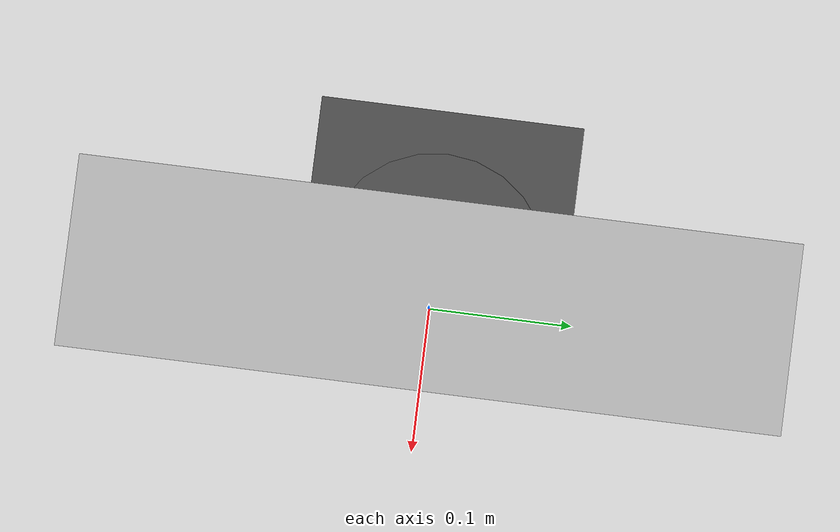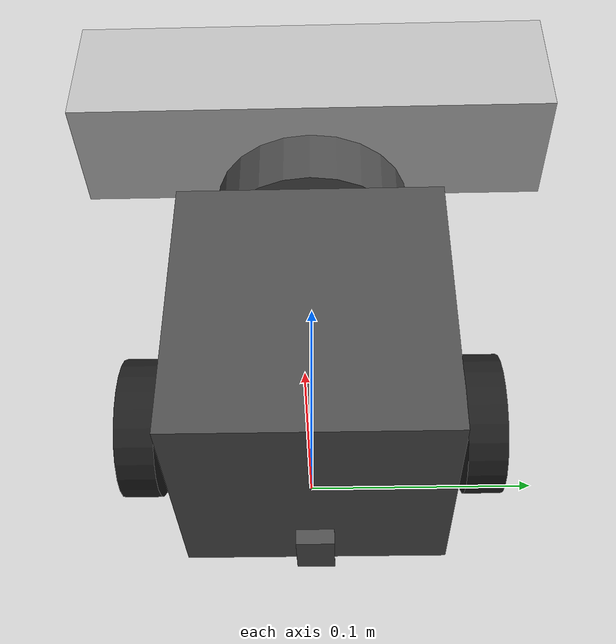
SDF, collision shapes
<?xml version='1.0'?>
<sdf version='1.7'>
  <model name='turtlebot3_burger_kinect'>
    <link name='base_footprint'>
      <inertial>
        <pose>-0.00429 0 0.030734 0 -0 0</pose>
        <mass>0.944735</mass>
        <inertia>
          <ixx>0.00717896</ixx>
          <ixy>-1.22941e-05</ixy>
          <ixz>0.00057674</ixz>
          <iyy>0.00721804</iyy>
          <iyz>-5.01209e-06</iyz>
          <izz>0.00413858</izz>
        </inertia>
      </inertial>
      <sensor name='imu' type='imu'>
        <always_on>1</always_on>
        <visualize>0</visualize>
        <pose>-0.032 0 0.078 0 -0 0</pose>
        <imu />
      </sensor>
      <sensor name='lds_lfcd_sensor' type='ray'>
        <visualize>0</visualize>
        <update_rate>5</update_rate>
        <ray>
          <scan>
            <horizontal>
              <samples>360</samples>
              <resolution>1</resolution>
              <min_angle>0</min_angle>
              <max_angle>6.28319</max_angle>
            </horizontal>
            <vertical>
              <samples>1</samples>
              <min_angle>0</min_angle>
              <max_angle>0</max_angle>
            </vertical>
          </scan>
          <range>
            <min>0.12</min>
            <max>3.5</max>
            <resolution>0.015</resolution>
          </range>
          <noise>
            <type>gaussian</type>
            <mean>0</mean>
            <stddev>0.01</stddev>
          </noise>
        </ray>
        <plugin name='gazebo_ros_lds_lfcd_controller' filename='libgazebo_ros_laser.so'>
          <topicName>scan</topicName>
          <frameName>base_scan</frameName>
          <robotNamespace>/</robotNamespace>
        </plugin>
        <pose>-0.032 0 0.182 0 -0 0</pose>
      </sensor>
      <self_collide>0</self_collide>
      <enable_wind>0</enable_wind>
      <kinematic>0</kinematic>
      <pose>0 0 0 0 -0 0</pose>
      <visual name='base_footprint_fixed_joint_lump__base_link_visual'>
        <pose>-0.032 0 0.01 0 -0 0</pose>
        <geometry>
          <mesh>
            <scale>0.001 0.001 0.001</scale>
            <uri>/opt/ros/noetic/share/turtlebot3_description/meshes/bases/burger_base.stl</uri>
          </mesh>
        </geometry>
        <material>
          <script>
            <name>Gazebo/DarkGrey</name>
            <uri>file://media/materials/scripts/gazebo.material</uri>
          </script>
          <shader type='pixel' />
        </material>
        <transparency>0</transparency>
        <cast_shadows>1</cast_shadows>
      </visual>
      <visual name='base_footprint_fixed_joint_lump__base_scan_visual_1'>
        <pose>-0.032 0 0.182 0 -0 0</pose>
        <geometry>
          <mesh>
            <scale>0.001 0.001 0.001</scale>
            <uri>/opt/ros/noetic/share/turtlebot3_description/meshes/sensors/lds.stl</uri>
          </mesh>
        </geometry>
        <material>
          <script>
            <name>Gazebo/FlatBlack</name>
            <uri>file://media/materials/scripts/gazebo.material</uri>
          </script>
          <shader type='pixel' />
        </material>
        <transparency>0</transparency>
        <cast_shadows>1</cast_shadows>
      </visual>
      <collision name='base_footprint_fixed_joint_lump__base_link_collision'>
        <laser_retro>0</laser_retro>
        <max_contacts>10</max_contacts>
        <pose>-0.032 0 0.08 0 -0 0</pose>
        <geometry>
          <box>
            <size>0.14 0.14 0.143</size>
          </box>
        </geometry>
        <surface>
          <friction>
            <ode>
              <mu>1</mu>
              <mu2>1</mu2>
              <fdir1>0 0 0</fdir1>
              <slip1>0</slip1>
              <slip2>0</slip2>
            </ode>
            <torsional>
              <coefficient>1</coefficient>
              <patch_radius>0</patch_radius>
              <surface_radius>0</surface_radius>
              <use_patch_radius>1</use_patch_radius>
              <ode>
                <slip>0</slip>
              </ode>
            </torsional>
          </friction>
          <bounce>
            <restitution_coefficient>0</restitution_coefficient>
            <threshold>1e+06</threshold>
          </bounce>
          <contact>
            <collide_without_contact>0</collide_without_contact>
            <collide_without_contact_bitmask>1</collide_without_contact_bitmask>
            <collide_bitmask>1</collide_bitmask>
            <ode>
              <soft_cfm>0</soft_cfm>
              <soft_erp>0.2</soft_erp>
              <kp>1e+13</kp>
              <kd>1</kd>
              <max_vel>0.01</max_vel>
              <min_depth>0</min_depth>
            </ode>
            <bullet>
              <split_impulse>1</split_impulse>
              <split_impulse_penetration_threshold>-0.01</split_impulse_penetration_threshold>
              <soft_cfm>0</soft_cfm>
              <soft_erp>0.2</soft_erp>
              <kp>1e+13</kp>
              <kd>1</kd>
            </bullet>
          </contact>
        </surface>
      </collision>
      <collision name='base_footprint_fixed_joint_lump__caster_back_link_collision_1'>
        <laser_retro>0</laser_retro>
        <max_contacts>10</max_contacts>
        <pose>-0.081 1e-06 0.005 -1.57 0 0</pose>
        <geometry>
          <box>
            <size>0.03 0.009 0.02</size>
          </box>
        </geometry>
        <surface>
          <friction>
            <ode>
              <mu>0.1</mu>
              <mu2>0.1</mu2>
              <fdir1>0 0 0</fdir1>
              <slip1>0</slip1>
              <slip2>0</slip2>
            </ode>
            <torsional>
              <coefficient>1</coefficient>
              <patch_radius>0</patch_radius>
              <surface_radius>0</surface_radius>
              <use_patch_radius>1</use_patch_radius>
              <ode>
                <slip>0</slip>
              </ode>
            </torsional>
          </friction>
          <bounce>
            <restitution_coefficient>0</restitution_coefficient>
            <threshold>1e+06</threshold>
          </bounce>
          <contact>
            <collide_without_contact>0</collide_without_contact>
            <collide_without_contact_bitmask>1</collide_without_contact_bitmask>
            <collide_bitmask>1</collide_bitmask>
            <ode>
              <soft_cfm>0</soft_cfm>
              <soft_erp>0.2</soft_erp>
              <kp>1e+06</kp>
              <kd>100</kd>
              <max_vel>1</max_vel>
              <min_depth>0.001</min_depth>
            </ode>
            <bullet>
              <split_impulse>1</split_impulse>
              <split_impulse_penetration_threshold>-0.01</split_impulse_penetration_threshold>
              <soft_cfm>0</soft_cfm>
              <soft_erp>0.2</soft_erp>
              <kp>1e+06</kp>
              <kd>100</kd>
            </bullet>
          </contact>
        </surface>
      </collision>
      <collision name='base_footprint_fixed_joint_lump__base_scan_collision_2'>
        <laser_retro>0</laser_retro>
        <max_contacts>10</max_contacts>
        <pose>-0.017 0 0.1755 0 -0 0</pose>
        <geometry>
          <cylinder>
            <radius>0.055</radius>
            <length>0.0315</length>
          </cylinder>
        </geometry>
        <surface>
          <friction>
            <ode>
              <mu>1</mu>
              <mu2>1</mu2>
              <fdir1>0 0 0</fdir1>
              <slip1>0</slip1>
              <slip2>0</slip2>
            </ode>
            <torsional>
              <coefficient>1</coefficient>
              <patch_radius>0</patch_radius>
              <surface_radius>0</surface_radius>
              <use_patch_radius>1</use_patch_radius>
              <ode>
                <slip>0</slip>
              </ode>
            </torsional>
          </friction>
          <bounce>
            <restitution_coefficient>0</restitution_coefficient>
            <threshold>1e+06</threshold>
          </bounce>
          <contact>
            <collide_without_contact>0</collide_without_contact>
            <collide_without_contact_bitmask>1</collide_without_contact_bitmask>
            <collide_bitmask>1</collide_bitmask>
            <ode>
              <soft_cfm>0</soft_cfm>
              <soft_erp>0.2</soft_erp>
              <kp>1e+13</kp>
              <kd>1</kd>
              <max_vel>0.01</max_vel>
              <min_depth>0</min_depth>
            </ode>
            <bullet>
              <split_impulse>1</split_impulse>
              <split_impulse_penetration_threshold>-0.01</split_impulse_penetration_threshold>
              <soft_cfm>0</soft_cfm>
              <soft_erp>0.2</soft_erp>
              <kp>1e+13</kp>
              <kd>1</kd>
            </bullet>
          </contact>
        </surface>
      </collision>
    </link>
    <link name='wheel_left_link'>
      <pose>0 0.08 0.033 -1.57 -0 0</pose>
      <inertial>
        <pose>0 0 0 0 -0 0</pose>
        <mass>0.0284989</mass>
        <inertia>
          <ixx>1.11756e-05</ixx>
          <ixy>-4.23698e-11</ixy>
          <ixz>-5.93817e-09</ixz>
          <iyy>1.11924e-05</iyy>
          <iyz>-1.44001e-11</iyz>
          <izz>2.07126e-05</izz>
        </inertia>
      </inertial>
      <self_collide>0</self_collide>
      <enable_wind>0</enable_wind>
      <kinematic>0</kinematic>
      <visual name='wheel_left_link_visual'>
        <pose>0 0 0 1.57 -0 0</pose>
        <geometry>
          <mesh>
            <scale>0.001 0.001 0.001</scale>
            <uri>/opt/ros/noetic/share/turtlebot3_description/meshes/wheels/left_tire.stl</uri>
          </mesh>
        </geometry>
        <material>
          <script>
            <name>Gazebo/FlatBlack</name>
            <uri>file://media/materials/scripts/gazebo.material</uri>
          </script>
          <shader type='pixel' />
        </material>
        <transparency>0</transparency>
        <cast_shadows>1</cast_shadows>
      </visual>
      <collision name='wheel_left_link_collision'>
        <laser_retro>0</laser_retro>
        <max_contacts>10</max_contacts>
        <pose>0 0 0 0 -0 0</pose>
        <geometry>
          <cylinder>
            <radius>0.033</radius>
            <length>0.018</length>
          </cylinder>
        </geometry>
        <surface>
          <friction>
            <ode>
              <mu>0.1</mu>
              <mu2>0.1</mu2>
              <fdir1>1 0 0</fdir1>
              <slip1>0</slip1>
              <slip2>0</slip2>
            </ode>
            <torsional>
              <coefficient>1</coefficient>
              <patch_radius>0</patch_radius>
              <surface_radius>0</surface_radius>
              <use_patch_radius>1</use_patch_radius>
              <ode>
                <slip>0</slip>
              </ode>
            </torsional>
          </friction>
          <bounce>
            <restitution_coefficient>0</restitution_coefficient>
            <threshold>1e+06</threshold>
          </bounce>
          <contact>
            <collide_without_contact>0</collide_without_contact>
            <collide_without_contact_bitmask>1</collide_without_contact_bitmask>
            <collide_bitmask>1</collide_bitmask>
            <ode>
              <soft_cfm>0</soft_cfm>
              <soft_erp>0.2</soft_erp>
              <kp>500000</kp>
              <kd>10</kd>
              <max_vel>0.1</max_vel>
              <min_depth>0.001</min_depth>
            </ode>
            <bullet>
              <split_impulse>1</split_impulse>
              <split_impulse_penetration_threshold>-0.01</split_impulse_penetration_threshold>
              <soft_cfm>0</soft_cfm>
              <soft_erp>0.2</soft_erp>
              <kp>500000</kp>
              <kd>10</kd>
            </bullet>
          </contact>
        </surface>
      </collision>
    </link>
    <link name='wheel_right_link'>
      <pose>0 -0.08 0.033 -1.57 -0 0</pose>
      <inertial>
        <pose>0 0 0 0 -0 0</pose>
        <mass>0.0284989</mass>
        <inertia>
          <ixx>1.11756e-05</ixx>
          <ixy>-4.23698e-11</ixy>
          <ixz>-5.93817e-09</ixz>
          <iyy>1.11924e-05</iyy>
          <iyz>-1.44001e-11</iyz>
          <izz>2.07126e-05</izz>
        </inertia>
      </inertial>
      <self_collide>0</self_collide>
      <enable_wind>0</enable_wind>
      <kinematic>0</kinematic>
      <visual name='wheel_right_link_visual'>
        <pose>0 0 0 1.57 -0 0</pose>
        <geometry>
          <mesh>
            <scale>0.001 0.001 0.001</scale>
            <uri>/opt/ros/noetic/share/turtlebot3_description/meshes/wheels/right_tire.stl</uri>
          </mesh>
        </geometry>
        <material>
          <script>
            <name>Gazebo/FlatBlack</name>
            <uri>file://media/materials/scripts/gazebo.material</uri>
          </script>
          <shader type='pixel' />
        </material>
        <transparency>0</transparency>
        <cast_shadows>1</cast_shadows>
      </visual>
      <collision name='wheel_right_link_collision'>
        <laser_retro>0</laser_retro>
        <max_contacts>10</max_contacts>
        <pose>0 0 0 0 -0 0</pose>
        <geometry>
          <cylinder>
            <radius>0.033</radius>
            <length>0.018</length>
          </cylinder>
        </geometry>
        <surface>
          <friction>
            <ode>
              <mu>0.1</mu>
              <mu2>0.1</mu2>
              <fdir1>1 0 0</fdir1>
              <slip1>0</slip1>
              <slip2>0</slip2>
            </ode>
            <torsional>
              <coefficient>1</coefficient>
              <patch_radius>0</patch_radius>
              <surface_radius>0</surface_radius>
              <use_patch_radius>1</use_patch_radius>
              <ode>
                <slip>0</slip>
              </ode>
            </torsional>
          </friction>
          <bounce>
            <restitution_coefficient>0</restitution_coefficient>
            <threshold>1e+06</threshold>
          </bounce>
          <contact>
            <collide_without_contact>0</collide_without_contact>
            <collide_without_contact_bitmask>1</collide_without_contact_bitmask>
            <collide_bitmask>1</collide_bitmask>
            <ode>
              <soft_cfm>0</soft_cfm>
              <soft_erp>0.2</soft_erp>
              <kp>500000</kp>
              <kd>10</kd>
              <max_vel>0.1</max_vel>
              <min_depth>0.001</min_depth>
            </ode>
            <bullet>
              <split_impulse>1</split_impulse>
              <split_impulse_penetration_threshold>-0.01</split_impulse_penetration_threshold>
              <soft_cfm>0</soft_cfm>
              <soft_erp>0.2</soft_erp>
              <kp>500000</kp>
              <kd>10</kd>
            </bullet>
          </contact>
        </surface>
      </collision>
    </link>
    <model name='kinect'>
      <pose>0.0 0.0 0.25 0 -0 0</pose>
      <link name='link'>
        <inertial>
          <pose>0.0 0.0 0.25 0 -0 0</pose>
          <mass>0.00003</mass>
          <inertia>
            <ixx>2.21000000e-11</ixx>
            <ixy>0.000000</ixy>
            <ixz>0.000000</ixz>
            <iyy>6.01000000e-11</iyy>
            <iyz>0.000000</iyz>
            <izz>7.72000000e-11</izz>
          </inertia>
        </inertial>
        <collision name='collision'>
          <geometry>
            <box>
              <size>0.073 0.276 0.072</size>
            </box>
          </geometry>
        </collision>
        <visual name='visual'>
          <geometry>
            <mesh>
              <uri>model://kinect/meshes/kinect.dae</uri>
            </mesh>
          </geometry>
        </visual>
        <sensor name='camera' type='depth'>
          <update_rate>20</update_rate>
          <camera>
            <horizontal_fov>1.0472</horizontal_fov>
            <image>
              <width>640</width>
              <height>480</height>
              <format>R8G8B8</format>
            </image>
            <clip>
              <near>0.05</near>
              <far>3</far>
            </clip>
          </camera>
          <plugin name='camera_plugin' filename='libgazebo_ros_openni_kinect.so'>
            <baseline>0.2</baseline>
            <alwaysOn>1</alwaysOn>
            <updateRate>0.0</updateRate>
            <cameraName>camera_ir</cameraName>
            <imageTopicName>/camera/color/image_raw</imageTopicName>
            <cameraInfoTopicName>/camera/color/camera_info</cameraInfoTopicName>
            <depthImageTopicName>/camera/depth/image_raw</depthImageTopicName>
            <depthImageCameraInfoTopicName>/camera/depth/camera_info</depthImageCameraInfoTopicName>
            <pointCloudTopicName>/camera/depth/points</pointCloudTopicName>
            <frameName>camera_link</frameName>
            <pointCloudCutoff>0.5</pointCloudCutoff>
            <pointCloudCutoffMax>3.0</pointCloudCutoffMax>
            <distortionK1>0</distortionK1>
            <distortionK2>0</distortionK2>
            <distortionK3>0</distortionK3>
            <distortionT1>0</distortionT1>
            <distortionT2>0</distortionT2>
            <CxPrime>0</CxPrime>
            <Cx>0</Cx>
            <Cy>0</Cy>
            <focalLength>0</focalLength>
            <hackBaseline>0</hackBaseline>
            <visualize>true</visualize>
          </plugin>
        </sensor>
      </link>
    </model>
    <model name='range'>
      <pose>0.05 0 0.15 0 0 0</pose>
      <link name='link'>
        <inertial>
          <pose>0.0 0.0 0.0 0 -0 0</pose>
          <mass>0.00001</mass>
          <inertia>
            <ixx>2.21000000e-11</ixx>
            <ixy>0.000000</ixy>
            <ixz>0.000000</ixz>
            <iyy>6.01000000e-11</iyy>
            <iyz>0.000000</iyz>
            <izz>7.72000000e-11</izz>
          </inertia>
        </inertial>
        <sensor type='ray' name='range_sensor_front'>
          <visualize>true</visualize>
          <update_rate>50</update_rate>
          <ray>
            <scan>
              <horizontal>
                <samples>1</samples>
                <resolution>1</resolution>
                <min_angle>0.0</min_angle>
                <max_angle>0.0</max_angle>
              </horizontal>
              <vertical>
                <samples>1</samples>
                <resolution>1</resolution>
                <min_angle>0.0</min_angle>
                <max_angle>0.0</max_angle>
              </vertical>
            </scan>
            <range>
              <min>0.05</min>
              <max>1.5</max>
              <resolution>0.05</resolution>
            </range>
          </ray>
          <plugin filename="libgazebo_ros_laser.so" name="gazebo_ros_range">
            <topicName>/proximity/front</topicName>
            <frameName>range_sensor_front</frameName>
            <gaussianNoise>0.000</gaussianNoise>
            <alwaysOn>true</alwaysOn>
            <updateRate>10</updateRate>
            <radiation>infrared</radiation>
            <fov>0.20</fov>
            <visualize>true</visualize>
          </plugin>
        </sensor>
      </link>
    </model>
    <joint name='wheel_left_joint' type='revolute'>
      <parent>base_footprint</parent>
      <child>wheel_left_link</child>
      <pose>0 0 0 0 -0 0</pose>
      <axis>
        <xyz>0 0 1</xyz>
        <limit>
          <lower>-1e+16</lower>
          <upper>1e+16</upper>
          <effort>-1</effort>
          <velocity>-1</velocity>
        </limit>
        <dynamics>
          <spring_reference>0</spring_reference>
          <spring_stiffness>0</spring_stiffness>
          <damping>0</damping>
          <friction>0</friction>
        </dynamics>
      </axis>
      <physics>
        <ode>
          <limit>
            <cfm>0</cfm>
            <erp>0.2</erp>
          </limit>
          <suspension>
            <cfm>0</cfm>
            <erp>0.2</erp>
          </suspension>
        </ode>
      </physics>
    </joint>
    <joint name='wheel_right_joint' type='revolute'>
      <parent>base_footprint</parent>
      <child>wheel_right_link</child>
      <pose>0 0 0 0 -0 0</pose>
      <axis>
        <xyz>0 0 1</xyz>
        <limit>
          <lower>-1e+16</lower>
          <upper>1e+16</upper>
          <effort>-1</effort>
          <velocity>-1</velocity>
        </limit>
        <dynamics>
          <spring_reference>0</spring_reference>
          <spring_stiffness>0</spring_stiffness>
          <damping>0</damping>
          <friction>0</friction>
        </dynamics>
      </axis>
      <physics>
        <ode>
          <limit>
            <cfm>0</cfm>
            <erp>0.2</erp>
          </limit>
          <suspension>
            <cfm>0</cfm>
            <erp>0.2</erp>
          </suspension>
        </ode>
      </physics>
    </joint>
    <joint name='kinect_joint' type='fixed'>
      <child>kinect::link</child>
      <parent>base_footprint</parent>
      <physics>
        <ode>
          <limit>
            <cfm>0</cfm>
            <erp>0.2</erp>
          </limit>
          <suspension>
            <cfm>0</cfm>
            <erp>0.2</erp>
          </suspension>
        </ode>
      </physics>
    </joint>
    <joint name='range_joint' type='fixed'>
      <child>range::link</child>
      <parent>base_footprint</parent>
      <physics>
        <ode>
          <limit>
            <cfm>0</cfm>
            <erp>0.2</erp>
          </limit>
          <suspension>
            <cfm>0</cfm>
            <erp>0.2</erp>
          </suspension>
        </ode>
      </physics>
    </joint>
    <static>0</static>
    <allow_auto_disable>1</allow_auto_disable>
    <plugin name='imu_plugin' filename='libgazebo_ros_imu.so'>
      <alwaysOn>1</alwaysOn>
      <topicName>imu</topicName>
      <serviceName>imu_service</serviceName>
      <gaussianNoise>0.0</gaussianNoise>
      <updateRate>0</updateRate>
      <imu>
        <noise>
          <type>gaussian</type>
          <rate>
            <mean>0.0</mean>
            <stddev>2e-4</stddev>
            <bias_mean>0.0000075</bias_mean>
            <bias_stddev>0.0000008</bias_stddev>
          </rate>
          <accel>
            <mean>0.0</mean>
            <stddev>1.7e-2</stddev>
            <bias_mean>0.1</bias_mean>
            <bias_stddev>0.001</bias_stddev>
          </accel>
        </noise>
      </imu>
      <robotNamespace>/</robotNamespace>
      <bodyName>base_footprint</bodyName>
      <frameName>base_footprint</frameName>
      <xyzOffset>0.064 0 -0.156</xyzOffset>
      <rpyOffset>0 -0 0</rpyOffset>
    </plugin>
    <plugin name='turtlebot3_burger_controller' filename='libgazebo_ros_diff_drive.so'>
      <commandTopic>cmd_vel</commandTopic>
      <odometryTopic>odom</odometryTopic>
      <odometryFrame>odom</odometryFrame>
      <odometrySource>world</odometrySource>
      <publishOdomTF>1</publishOdomTF>
      <robotBaseFrame>base_footprint</robotBaseFrame>
      <publishWheelTF>0</publishWheelTF>
      <publishTf>1</publishTf>
      <publishWheelJointState>1</publishWheelJointState>
      <legacyMode>0</legacyMode>
      <updateRate>30</updateRate>
      <leftJoint>wheel_left_joint</leftJoint>
      <rightJoint>wheel_right_joint</rightJoint>
      <wheelSeparation>0.160</wheelSeparation>
      <wheelDiameter>0.066</wheelDiameter>
      <wheelAcceleration>1</wheelAcceleration>
      <wheelTorque>10</wheelTorque>
      <rosDebugLevel>na</rosDebugLevel>
      <robotNamespace>/</robotNamespace>
    </plugin>
  </model>
</sdf>
